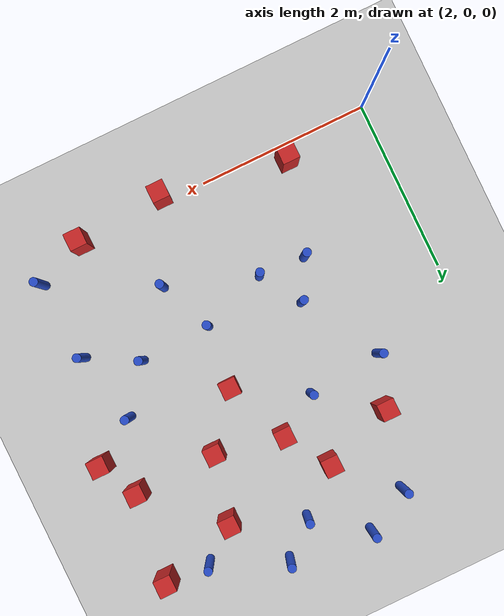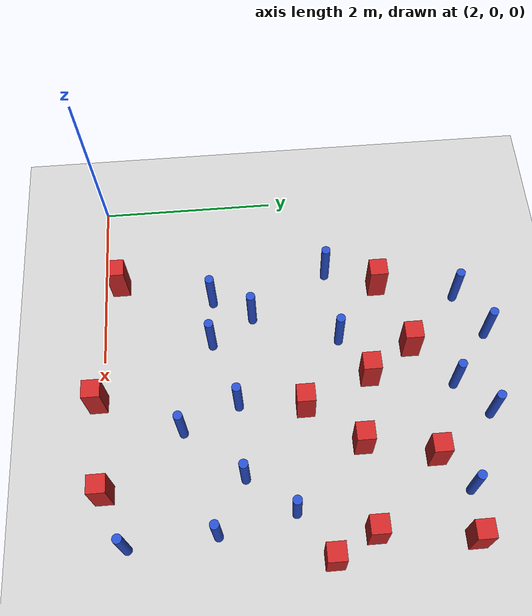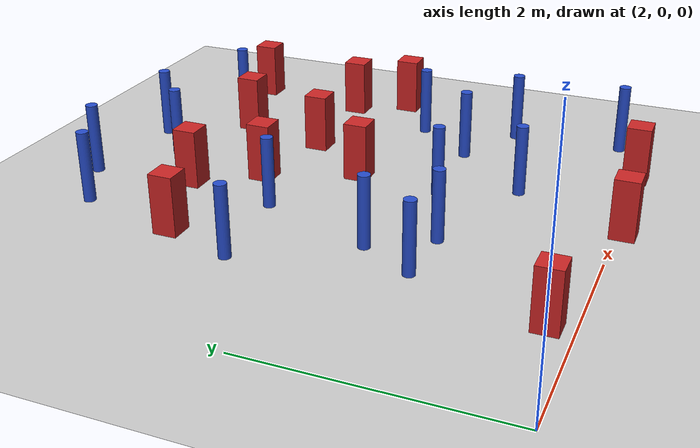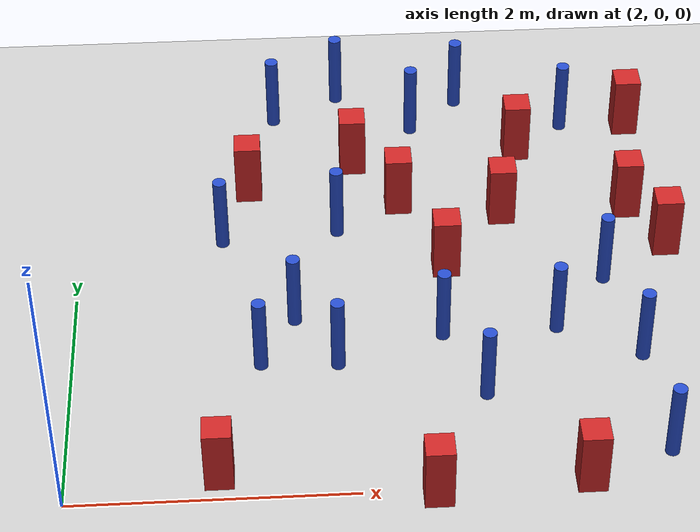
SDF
<sdf version="1.6">
 <world name="default">
  <model name="ground_plane">
   <static>1</static>
   <link name="link">
    <collision name="collision">
     <geometry><plane><normal>0 0 1</normal><size>100 100</size></plane></geometry>
     <surface><friction><ode><mu>100</mu><mu2>50</mu2></ode></friction></surface>
    </collision>
    <visual name="visual">
     <cast_shadows>0</cast_shadows>
     <geometry><plane><normal>0 0 1</normal><size>100 100</size></plane></geometry>
     <material>
      <ambient>1.0 1.0 1.0 1.0</ambient>
      <diffuse>0.8 0.8 0.8 1.0</diffuse>
      <specular>0.01 0.01 0.01 1.000000</specular>
     </material>
    </visual>
   </link>
  </model>
  <model name="square_post_obstacle8">
   <static>true</static>
   <pose>3.04568365007 0.186025562738 -6.11067671241e-07 -5.50515727128e-06 -8.79689657224e-07 2.37013304536e-05</pose>
   <link name="link">
    <pose>0 0 0.25 0 -0 0</pose>
    <inertial>
     <mass>100</mass>
     <inertia>
      <ixx>0.166667</ixx>
      <ixy>0</ixy>
      <ixz>0</ixz>
      <iyy>0.166667</iyy>
      <iyz>0</iyz>
      <izz>0.166667</izz>
     </inertia>
    </inertial>
    <collision name="collision"><geometry><box><size>.2 .2 .5</size></box></geometry></collision>
    <visual name="visual">
     <geometry><box><size>.2 .2 .5</size></box></geometry>
     <material>
      <script><name>Gazebo/Red</name><uri>file://media/materials/scripts/gazebo.material</uri></script>
     </material>
    </visual>
   </link>
  </model>
  <model name="square_post_obstacle19">
   <static>true</static>
   <pose>4.50263359824 -0.0530470735372 -6.11067671241e-07 -5.50515727128e-06 -8.79689657224e-07 2.37013304536e-05</pose>
   <link name="link">
    <pose>0 0 0.25 0 -0 0</pose>
    <inertial>
     <mass>100</mass>
     <inertia>
      <ixx>0.166667</ixx>
      <ixy>0</ixy>
      <ixz>0</ixz>
      <iyy>0.166667</iyy>
      <iyz>0</iyz>
      <izz>0.166667</izz>
     </inertia>
    </inertial>
    <collision name="collision"><geometry><box><size>.2 .2 .5</size></box></geometry></collision>
    <visual name="visual">
     <geometry><box><size>.2 .2 .5</size></box></geometry>
     <material>
      <script><name>Gazebo/Red</name><uri>file://media/materials/scripts/gazebo.material</uri></script>
     </material>
    </visual>
   </link>
  </model>
  <model name="pole_obstacle11">
   <static>true</static>
   <pose>4.00027393497 4.34988775769 -9.47619616065e-06 5.49618799737e-07 2.36310414037e-07 -1.55090534814e-07</pose>
   <link name="link">
    <pose>0 0 0.3 0 -0 0</pose>
    <inertial>
     <mass>1</mass>
     <inertia><ixx>0.145833</ixx><ixy>0</ixy><ixz>0</ixz><iyy>0.145833</iyy><iyz>0</iyz><izz>0.125</izz></inertia>
    </inertial>
    <collision name="collision">
     <geometry><cylinder><radius>0.05</radius><length>.6</length></cylinder></geometry>
    </collision>
    <visual name="visual">
     <geometry><cylinder><radius>0.05</radius><length>.6</length></cylinder></geometry>
     <material>
      <script><name>Gazebo/Blue</name><uri>file://media/materials/scripts/gazebo.material</uri></script>
     </material>
    </visual>
   </link>
  </model>
  <model name="square_post_obstacle41">
   <static>true</static>
   <pose>4.42364671763 2.96260429846 -6.11067671241e-07 -5.50515727128e-06 -8.79689657224e-07 2.37013304536e-05</pose>
   <link name="link">
    <pose>0 0 0.25 0 -0 0</pose>
    <inertial>
     <mass>100</mass>
     <inertia>
      <ixx>0.166667</ixx>
      <ixy>0</ixy>
      <ixz>0</ixz>
      <iyy>0.166667</iyy>
      <iyz>0</iyz>
      <izz>0.166667</izz>
     </inertia>
    </inertial>
    <collision name="collision"><geometry><box><size>.2 .2 .5</size></box></geometry></collision>
    <visual name="visual">
     <geometry><box><size>.2 .2 .5</size></box></geometry>
     <material>
      <script><name>Gazebo/Red</name><uri>file://media/materials/scripts/gazebo.material</uri></script>
     </material>
    </visual>
   </link>
  </model>
  <model name="square_post_obstacle58">
   <static>true</static>
   <pose>4.73409323332 2.21882491592 -6.11067671241e-07 -5.50515727128e-06 -8.79689657224e-07 2.37013304536e-05</pose>
   <link name="link">
    <pose>0 0 0.25 0 -0 0</pose>
    <inertial>
     <mass>100</mass>
     <inertia>
      <ixx>0.166667</ixx>
      <ixy>0</ixy>
      <ixz>0</ixz>
      <iyy>0.166667</iyy>
      <iyz>0</iyz>
      <izz>0.166667</izz>
     </inertia>
    </inertial>
    <collision name="collision"><geometry><box><size>.2 .2 .5</size></box></geometry></collision>
    <visual name="visual">
     <geometry><box><size>.2 .2 .5</size></box></geometry>
     <material>
      <script><name>Gazebo/Red</name><uri>file://media/materials/scripts/gazebo.material</uri></script>
     </material>
    </visual>
   </link>
  </model>
  <model name="pole_obstacle57">
   <static>true</static>
   <pose>3.94204193358 2.67132849761 -9.47619616065e-06 5.49618799737e-07 2.36310414051e-07 -1.55090534807e-07</pose>
   <link name="link">
    <pose>0 0 0.3 0 -0 0</pose>
    <inertial>
     <mass>1</mass>
     <inertia><ixx>0.145833</ixx><ixy>0</ixy><ixz>0</ixz><iyy>0.145833</iyy><iyz>0</iyz><izz>0.125</izz></inertia>
    </inertial>
    <collision name="collision">
     <geometry><cylinder><radius>0.05</radius><length>.6</length></cylinder></geometry>
    </collision>
    <visual name="visual">
     <geometry><cylinder><radius>0.05</radius><length>.6</length></cylinder></geometry>
     <material>
      <script><name>Gazebo/Blue</name><uri>file://media/materials/scripts/gazebo.material</uri></script>
     </material>
    </visual>
   </link>
  </model>
  <model name="square_post_obstacle66">
   <static>true</static>
   <pose>3.2789490071 3.17853277757 -6.11067671241e-07 -5.50515727128e-06 -8.79689657224e-07 2.37013304536e-05</pose>
   <link name="link">
    <pose>0 0 0.25 0 -0 0</pose>
    <inertial>
     <mass>100</mass>
     <inertia>
      <ixx>0.166667</ixx>
      <ixy>0</ixy>
      <ixz>0</ixz>
      <iyy>0.166667</iyy>
      <iyz>0</iyz>
      <izz>0.166667</izz>
     </inertia>
    </inertial>
    <collision name="collision"><geometry><box><size>.2 .2 .5</size></box></geometry></collision>
    <visual name="visual">
     <geometry><box><size>.2 .2 .5</size></box></geometry>
     <material>
      <script><name>Gazebo/Red</name><uri>file://media/materials/scripts/gazebo.material</uri></script>
     </material>
    </visual>
   </link>
  </model>
  <model name="pole_obstacle66">
   <static>true</static>
   <pose>6.06449971869 1.20316697286 -9.47619616065e-06 5.49618799738e-07 2.36310414071e-07 -1.55090534796e-07</pose>
   <link name="link">
    <pose>0 0 0.3 0 -0 0</pose>
    <inertial>
     <mass>1</mass>
     <inertia><ixx>0.145833</ixx><ixy>0</ixy><ixz>0</ixz><iyy>0.145833</iyy><iyz>0</iyz><izz>0.125</izz></inertia>
    </inertial>
    <collision name="collision">
     <geometry><cylinder><radius>0.05</radius><length>.6</length></cylinder></geometry>
    </collision>
    <visual name="visual">
     <geometry><cylinder><radius>0.05</radius><length>.6</length></cylinder></geometry>
     <material>
      <script><name>Gazebo/Blue</name><uri>file://media/materials/scripts/gazebo.material</uri></script>
     </material>
    </visual>
   </link>
  </model>
  <model name="pole_obstacle73">
   <static>true</static>
   <pose>6.12441952049 0.264928909685 -9.47619616065e-06 5.49618799737e-07 2.3631041406e-07 -1.550905348e-07</pose>
   <link name="link">
    <pose>0 0 0.3 0 -0 0</pose>
    <inertial>
     <mass>1</mass>
     <inertia><ixx>0.145833</ixx><ixy>0</ixy><ixz>0</ixz><iyy>0.145833</iyy><iyz>0</iyz><izz>0.125</izz></inertia>
    </inertial>
    <collision name="collision">
     <geometry><cylinder><radius>0.05</radius><length>.6</length></cylinder></geometry>
    </collision>
    <visual name="visual">
     <geometry><cylinder><radius>0.05</radius><length>.6</length></cylinder></geometry>
     <material>
      <script><name>Gazebo/Blue</name><uri>file://media/materials/scripts/gazebo.material</uri></script>
     </material>
    </visual>
   </link>
  </model>
  <model name="pole_obstacle75">
   <static>true</static>
   <pose>5.89192949879 2.02843567691 -9.47619616065e-06 5.49618799737e-07 2.36310414065e-07 -1.55090534797e-07</pose>
   <link name="link">
    <pose>0 0 0.3 0 -0 0</pose>
    <inertial>
     <mass>1</mass>
     <inertia><ixx>0.145833</ixx><ixy>0</ixy><ixz>0</ixz><iyy>0.145833</iyy><iyz>0</iyz><izz>0.125</izz></inertia>
    </inertial>
    <collision name="collision">
     <geometry><cylinder><radius>0.05</radius><length>.6</length></cylinder></geometry>
    </collision>
    <visual name="visual">
     <geometry><cylinder><radius>0.05</radius><length>.6</length></cylinder></geometry>
     <material>
      <script><name>Gazebo/Blue</name><uri>file://media/materials/scripts/gazebo.material</uri></script>
     </material>
    </visual>
   </link>
  </model>
  <model name="pole_obstacle76">
   <static>true</static>
   <pose>3.48642598903 4.07143372269 -9.47619616065e-06 5.49618799738e-07 2.3631041406e-07 -1.55090534801e-07</pose>
   <link name="link">
    <pose>0 0 0.3 0 -0 0</pose>
    <inertial>
     <mass>1</mass>
     <inertia><ixx>0.145833</ixx><ixy>0</ixy><ixz>0</ixz><iyy>0.145833</iyy><iyz>0</iyz><izz>0.125</izz></inertia>
    </inertial>
    <collision name="collision">
     <geometry><cylinder><radius>0.05</radius><length>.6</length></cylinder></geometry>
    </collision>
    <visual name="visual">
     <geometry><cylinder><radius>0.05</radius><length>.6</length></cylinder></geometry>
     <material>
      <script><name>Gazebo/Blue</name><uri>file://media/materials/scripts/gazebo.material</uri></script>
     </material>
    </visual>
   </link>
  </model>
  <model name="pole_obstacle91">
   <static>true</static>
   <pose>4.91735121988 0.873259632748 -9.47619616065e-06 5.49618799737e-07 2.36310414061e-07 -1.550905348e-07</pose>
   <link name="link">
    <pose>0 0 0.3 0 -0 0</pose>
    <inertial>
     <mass>1</mass>
     <inertia><ixx>0.145833</ixx><ixy>0</ixy><ixz>0</ixz><iyy>0.145833</iyy><iyz>0</iyz><izz>0.125</izz></inertia>
    </inertial>
    <collision name="collision">
     <geometry><cylinder><radius>0.05</radius><length>.6</length></cylinder></geometry>
    </collision>
    <visual name="visual">
     <geometry><cylinder><radius>0.05</radius><length>.6</length></cylinder></geometry>
     <material>
      <script><name>Gazebo/Blue</name><uri>file://media/materials/scripts/gazebo.material</uri></script>
     </material>
    </visual>
   </link>
  </model>
  <model name="square_post_obstacle98">
   <static>true</static>
   <pose>4.09499771162 3.46620073269 -6.11067671241e-07 -5.50515727128e-06 -8.79689657224e-07 2.37013304536e-05</pose>
   <link name="link">
    <pose>0 0 0.25 0 -0 0</pose>
    <inertial>
     <mass>100</mass>
     <inertia>
      <ixx>0.166667</ixx>
      <ixy>0</ixy>
      <ixz>0</ixz>
      <iyy>0.166667</iyy>
      <iyz>0</iyz>
      <izz>0.166667</izz>
     </inertia>
    </inertial>
    <collision name="collision"><geometry><box><size>.2 .2 .5</size></box></geometry></collision>
    <visual name="visual">
     <geometry><box><size>.2 .2 .5</size></box></geometry>
     <material>
      <script><name>Gazebo/Red</name><uri>file://media/materials/scripts/gazebo.material</uri></script>
     </material>
    </visual>
   </link>
  </model>
  <model name="square_post_obstacle109">
   <static>true</static>
   <pose>6.39985033564 2.36949017189 -6.11067671241e-07 -5.50515727128e-06 -8.79689657224e-07 2.37013304536e-05</pose>
   <link name="link">
    <pose>0 0 0.25 0 -0 0</pose>
    <inertial>
     <mass>100</mass>
     <inertia>
      <ixx>0.166667</ixx>
      <ixy>0</ixy>
      <ixz>0</ixz>
      <iyy>0.166667</iyy>
      <iyz>0</iyz>
      <izz>0.166667</izz>
     </inertia>
    </inertial>
    <collision name="collision"><geometry><box><size>.2 .2 .5</size></box></geometry></collision>
    <visual name="visual">
     <geometry><box><size>.2 .2 .5</size></box></geometry>
     <material>
      <script><name>Gazebo/Red</name><uri>file://media/materials/scripts/gazebo.material</uri></script>
     </material>
    </visual>
   </link>
  </model>
  <model name="square_post_obstacle116">
   <static>true</static>
   <pose>5.53704041023 0.0246563115403 -6.11067671241e-07 -5.50515727128e-06 -8.79689657224e-07 2.37013304536e-05</pose>
   <link name="link">
    <pose>0 0 0.25 0 -0 0</pose>
    <inertial>
     <mass>100</mass>
     <inertia>
      <ixx>0.166667</ixx>
      <ixy>0</ixy>
      <ixz>0</ixz>
      <iyy>0.166667</iyy>
      <iyz>0</iyz>
      <izz>0.166667</izz>
     </inertia>
    </inertial>
    <collision name="collision"><geometry><box><size>.2 .2 .5</size></box></geometry></collision>
    <visual name="visual">
     <geometry><box><size>.2 .2 .5</size></box></geometry>
     <material>
      <script><name>Gazebo/Red</name><uri>file://media/materials/scripts/gazebo.material</uri></script>
     </material>
    </visual>
   </link>
  </model>
  <model name="square_post_obstacle117">
   <static>true</static>
   <pose>5.39380302013 3.57061827399 -6.11067671241e-07 -5.50515727128e-06 -8.79689657224e-07 2.37013304536e-05</pose>
   <link name="link">
    <pose>0 0 0.25 0 -0 0</pose>
    <inertial>
     <mass>100</mass>
     <inertia>
      <ixx>0.166667</ixx>
      <ixy>0</ixy>
      <ixz>0</ixz>
      <iyy>0.166667</iyy>
      <iyz>0</iyz>
      <izz>0.166667</izz>
     </inertia>
    </inertial>
    <collision name="collision"><geometry><box><size>.2 .2 .5</size></box></geometry></collision>
    <visual name="visual">
     <geometry><box><size>.2 .2 .5</size></box></geometry>
     <material>
      <script><name>Gazebo/Red</name><uri>file://media/materials/scripts/gazebo.material</uri></script>
     </material>
    </visual>
   </link>
  </model>
  <model name="pole_obstacle155">
   <static>true</static>
   <pose>5.48355185224 1.51869304675 -9.47619616065e-06 5.49618799738e-07 2.36310414071e-07 -1.55090534796e-07</pose>
   <link name="link">
    <pose>0 0 0.3 0 -0 0</pose>
    <inertial>
     <mass>1</mass>
     <inertia><ixx>0.145833</ixx><ixy>0</ixy><ixz>0</ixz><iyy>0.145833</iyy><iyz>0</iyz><izz>0.125</izz></inertia>
    </inertial>
    <collision name="collision">
     <geometry><cylinder><radius>0.05</radius><length>.6</length></cylinder></geometry>
    </collision>
    <visual name="visual">
     <geometry><cylinder><radius>0.05</radius><length>.6</length></cylinder></geometry>
     <material>
      <script><name>Gazebo/Blue</name><uri>file://media/materials/scripts/gazebo.material</uri></script>
     </material>
    </visual>
   </link>
  </model>
  <model name="pole_obstacle160">
   <static>true</static>
   <pose>4.65492944159 1.4909090895 -9.47619616065e-06 5.49618799738e-07 2.36310414071e-07 -1.55090534796e-07</pose>
   <link name="link">
    <pose>0 0 0.3 0 -0 0</pose>
    <inertial>
     <mass>1</mass>
     <inertia><ixx>0.145833</ixx><ixy>0</ixy><ixz>0</ixz><iyy>0.145833</iyy><iyz>0</iyz><izz>0.125</izz></inertia>
    </inertial>
    <collision name="collision">
     <geometry><cylinder><radius>0.05</radius><length>.6</length></cylinder></geometry>
    </collision>
    <visual name="visual">
     <geometry><cylinder><radius>0.05</radius><length>.6</length></cylinder></geometry>
     <material>
      <script><name>Gazebo/Blue</name><uri>file://media/materials/scripts/gazebo.material</uri></script>
     </material>
    </visual>
   </link>
  </model>
  <model name="square_post_obstacle156">
   <static>true</static>
   <pose>6.30170269562 3.84891209482 -6.11067671241e-07 -5.50515727128e-06 -8.79689657224e-07 2.37013304536e-05</pose>
   <link name="link">
    <pose>0 0 0.25 0 -0 0</pose>
    <inertial>
     <mass>100</mass>
     <inertia>
      <ixx>0.166667</ixx>
      <ixy>0</ixy>
      <ixz>0</ixz>
      <iyy>0.166667</iyy>
      <iyz>0</iyz>
      <izz>0.166667</izz>
     </inertia>
    </inertial>
    <collision name="collision"><geometry><box><size>.2 .2 .5</size></box></geometry></collision>
    <visual name="visual">
     <geometry><box><size>.2 .2 .5</size></box></geometry>
     <material>
      <script><name>Gazebo/Red</name><uri>file://media/materials/scripts/gazebo.material</uri></script>
     </material>
    </visual>
   </link>
  </model>
  <model name="pole_obstacle166">
   <static>true</static>
   <pose>3.88949240759 1.23049291903 -9.47619616065e-06 5.49618799737e-07 2.36310414072e-07 -1.55090534793e-07</pose>
   <link name="link">
    <pose>0 0 0.3 0 -0 0</pose>
    <inertial>
     <mass>1</mass>
     <inertia><ixx>0.145833</ixx><ixy>0</ixy><ixz>0</ixz><iyy>0.145833</iyy><iyz>0</iyz><izz>0.125</izz></inertia>
    </inertial>
    <collision name="collision">
     <geometry><cylinder><radius>0.05</radius><length>.6</length></cylinder></geometry>
    </collision>
    <visual name="visual">
     <geometry><cylinder><radius>0.05</radius><length>.6</length></cylinder></geometry>
     <material>
      <script><name>Gazebo/Blue</name><uri>file://media/materials/scripts/gazebo.material</uri></script>
     </material>
    </visual>
   </link>
  </model>
  <model name="pole_obstacle173">
   <static>true</static>
   <pose>4.96482589029 4.24393029031 -9.47619616065e-06 5.49618799737e-07 2.36310414037e-07 -1.55090534814e-07</pose>
   <link name="link">
    <pose>0 0 0.3 0 -0 0</pose>
    <inertial>
     <mass>1</mass>
     <inertia><ixx>0.145833</ixx><ixy>0</ixy><ixz>0</ixz><iyy>0.145833</iyy><iyz>0</iyz><izz>0.125</izz></inertia>
    </inertial>
    <collision name="collision">
     <geometry><cylinder><radius>0.05</radius><length>.6</length></cylinder></geometry>
    </collision>
    <visual name="visual">
     <geometry><cylinder><radius>0.05</radius><length>.6</length></cylinder></geometry>
     <material>
      <script><name>Gazebo/Blue</name><uri>file://media/materials/scripts/gazebo.material</uri></script>
     </material>
    </visual>
   </link>
  </model>
  <model name="square_post_obstacle188">
   <static>true</static>
   <pose>6.16935457173 2.82097435387 -6.11067671241e-07 -5.50515727128e-06 -8.79689657224e-07 2.37013304536e-05</pose>
   <link name="link">
    <pose>0 0 0.25 0 -0 0</pose>
    <inertial>
     <mass>100</mass>
     <inertia>
      <ixx>0.166667</ixx>
      <ixy>0</ixy>
      <ixz>0</ixz>
      <iyy>0.166667</iyy>
      <iyz>0</iyz>
      <izz>0.166667</izz>
     </inertia>
    </inertial>
    <collision name="collision"><geometry><box><size>.2 .2 .5</size></box></geometry></collision>
    <visual name="visual">
     <geometry><box><size>.2 .2 .5</size></box></geometry>
     <material>
      <script><name>Gazebo/Red</name><uri>file://media/materials/scripts/gazebo.material</uri></script>
     </material>
    </visual>
   </link>
  </model>
  <model name="square_post_obstacle197">
   <static>true</static>
   <pose>5.20366196037 2.79741261549 -6.11067671241e-07 -5.50515727128e-06 -8.79689657224e-07 2.37013304536e-05</pose>
   <link name="link">
    <pose>0 0 0.25 0 -0 0</pose>
    <inertial>
     <mass>100</mass>
     <inertia>
      <ixx>0.166667</ixx>
      <ixy>0</ixy>
      <ixz>0</ixz>
      <iyy>0.166667</iyy>
      <iyz>0</iyz>
      <izz>0.166667</izz>
     </inertia>
    </inertial>
    <collision name="collision"><geometry><box><size>.2 .2 .5</size></box></geometry></collision>
    <visual name="visual">
     <geometry><box><size>.2 .2 .5</size></box></geometry>
     <material>
      <script><name>Gazebo/Red</name><uri>file://media/materials/scripts/gazebo.material</uri></script>
     </material>
    </visual>
   </link>
  </model>
  <model name="pole_obstacle205">
   <static>true</static>
   <pose>3.34155444829 1.25783001732 -9.47619616065e-06 5.49618799737e-07 2.36310414072e-07 -1.55090534793e-07</pose>
   <link name="link">
    <pose>0 0 0.3 0 -0 0</pose>
    <inertial>
     <mass>1</mass>
     <inertia><ixx>0.145833</ixx><ixy>0</ixy><ixz>0</ixz><iyy>0.145833</iyy><iyz>0</iyz><izz>0.125</izz></inertia>
    </inertial>
    <collision name="collision">
     <geometry><cylinder><radius>0.05</radius><length>.6</length></cylinder></geometry>
    </collision>
    <visual name="visual">
     <geometry><cylinder><radius>0.05</radius><length>.6</length></cylinder></geometry>
     <material>
      <script><name>Gazebo/Blue</name><uri>file://media/materials/scripts/gazebo.material</uri></script>
     </material>
    </visual>
   </link>
  </model>
  <model name="pole_obstacle218">
   <static>true</static>
   <pose>5.79044491955 3.88269441548 -9.47619616065e-06 5.49618799738e-07 2.36310414051e-07 -1.55090534805e-07</pose>
   <link name="link">
    <pose>0 0 0.3 0 -0 0</pose>
    <inertial>
     <mass>1</mass>
     <inertia><ixx>0.145833</ixx><ixy>0</ixy><ixz>0</ixz><iyy>0.145833</iyy><iyz>0</iyz><izz>0.125</izz></inertia>
    </inertial>
    <collision name="collision">
     <geometry><cylinder><radius>0.05</radius><length>.6</length></cylinder></geometry>
    </collision>
    <visual name="visual">
     <geometry><cylinder><radius>0.05</radius><length>.6</length></cylinder></geometry>
     <material>
      <script><name>Gazebo/Blue</name><uri>file://media/materials/scripts/gazebo.material</uri></script>
     </material>
    </visual>
   </link>
  </model>
  <model name="pole_obstacle221">
   <static>true</static>
   <pose>3.5926906713 1.70489849519 -9.47619616065e-06 5.49618799737e-07 2.36310414072e-07 -1.55090534793e-07</pose>
   <link name="link">
    <pose>0 0 0.3 0 -0 0</pose>
    <inertial>
     <mass>1</mass>
     <inertia><ixx>0.145833</ixx><ixy>0</ixy><ixz>0</ixz><iyy>0.145833</iyy><iyz>0</iyz><izz>0.125</izz></inertia>
    </inertial>
    <collision name="collision">
     <geometry><cylinder><radius>0.05</radius><length>.6</length></cylinder></geometry>
    </collision>
    <visual name="visual">
     <geometry><cylinder><radius>0.05</radius><length>.6</length></cylinder></geometry>
     <material>
      <script><name>Gazebo/Blue</name><uri>file://media/materials/scripts/gazebo.material</uri></script>
     </material>
    </visual>
   </link>
  </model>
  <model name="pole_obstacle224">
   <static>true</static>
   <pose>3.07232180968 2.59434198393 -9.47619616065e-06 5.49618799737e-07 2.36310414051e-07 -1.55090534807e-07</pose>
   <link name="link">
    <pose>0 0 0.3 0 -0 0</pose>
    <inertial>
     <mass>1</mass>
     <inertia><ixx>0.145833</ixx><ixy>0</ixy><ixz>0</ixz><iyy>0.145833</iyy><iyz>0</iyz><izz>0.125</izz></inertia>
    </inertial>
    <collision name="collision">
     <geometry><cylinder><radius>0.05</radius><length>.6</length></cylinder></geometry>
    </collision>
    <visual name="visual">
     <geometry><cylinder><radius>0.05</radius><length>.6</length></cylinder></geometry>
     <material>
      <script><name>Gazebo/Blue</name><uri>file://media/materials/scripts/gazebo.material</uri></script>
     </material>
    </visual>
   </link>
  </model>
  <model name="pole_obstacle240">
   <static>true</static>
   <pose>4.58260504056 3.90111021666 -9.47619616065e-06 5.49618799738e-07 2.36310414051e-07 -1.55090534805e-07</pose>
   <link name="link">
    <pose>0 0 0.3 0 -0 0</pose>
    <inertial>
     <mass>1</mass>
     <inertia><ixx>0.145833</ixx><ixy>0</ixy><ixz>0</ixz><iyy>0.145833</iyy><iyz>0</iyz><izz>0.125</izz></inertia>
    </inertial>
    <collision name="collision">
     <geometry><cylinder><radius>0.05</radius><length>.6</length></cylinder></geometry>
    </collision>
    <visual name="visual">
     <geometry><cylinder><radius>0.05</radius><length>.6</length></cylinder></geometry>
     <material>
      <script><name>Gazebo/Blue</name><uri>file://media/materials/scripts/gazebo.material</uri></script>
     </material>
    </visual>
   </link>
  </model>
 </world>
</sdf>
